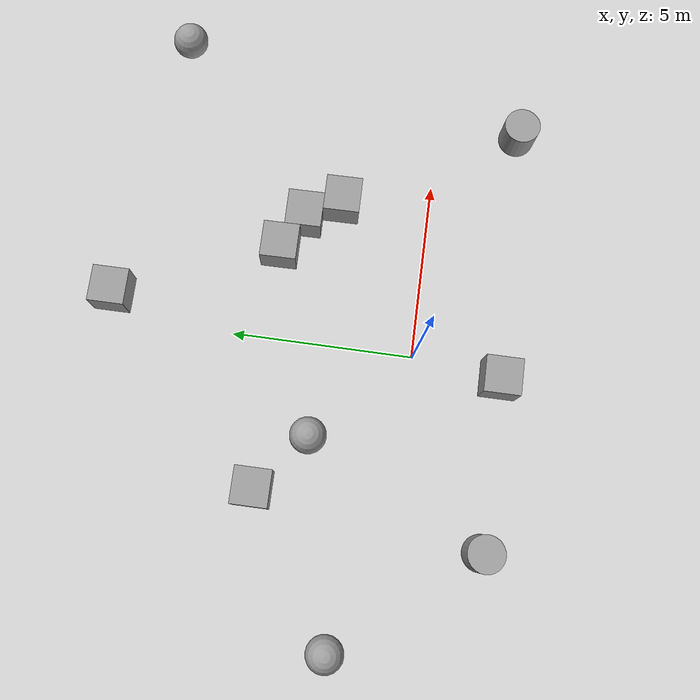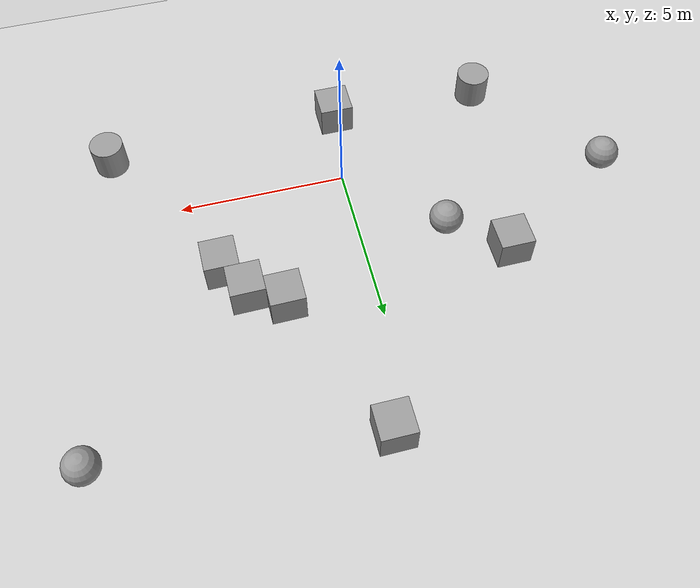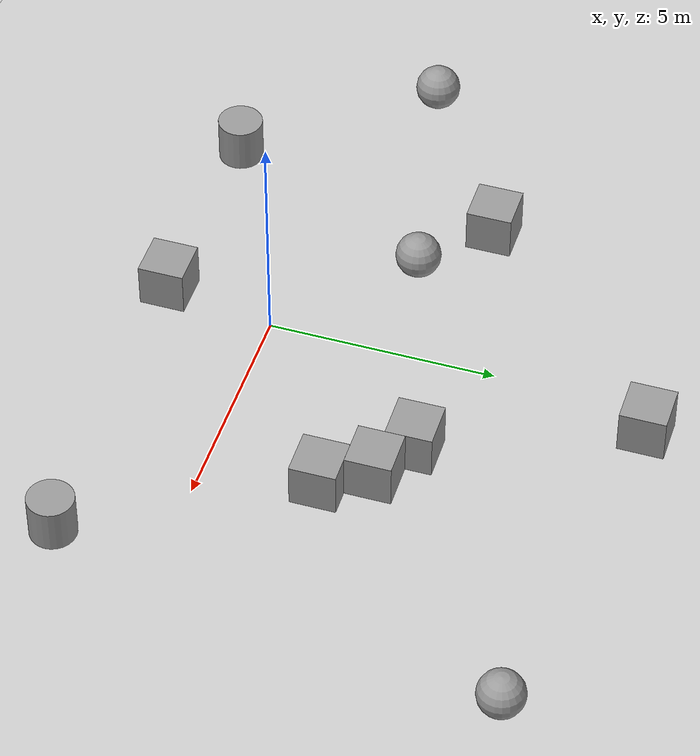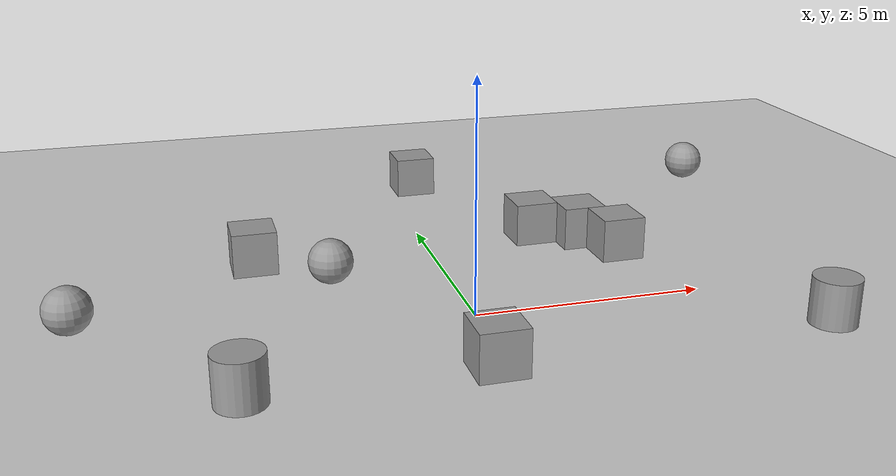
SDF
<sdf version="1.6">
 <world name="default">
  <model name="ground_plane">
   <static>1</static>
   <link name="link">
    <collision name="collision">
     <geometry><plane><normal>0 0 1</normal><size>100 100</size></plane></geometry>
     <surface>
      <contact><collide_bitmask>65535</collide_bitmask></contact>
      <friction><ode><mu>100</mu><mu2>50</mu2></ode></friction>
     </surface>
    </collision>
    <visual name="visual">
     <cast_shadows>0</cast_shadows>
     <geometry><plane><normal>0 0 1</normal><size>100 100</size></plane></geometry>
     <material>
      <script><uri>file://media/materials/scripts/gazebo.material</uri><name>Gazebo/Grey</name></script>
     </material>
    </visual>
   </link>
  </model>
  <model name="unit_box">
   <pose>-0.323593 -2.40463 0.5 0 -0 0</pose>
   <link name="link">
    <inertial>
     <mass>1</mass>
     <inertia>
      <ixx>0.166667</ixx>
      <ixy>0</ixy>
      <ixz>0</ixz>
      <iyy>0.166667</iyy>
      <iyz>0</iyz>
      <izz>0.166667</izz>
     </inertia>
    </inertial>
    <collision name="collision"><geometry><box><size>1 1 1</size></box></geometry></collision>
    <visual name="visual">
     <geometry><box><size>1 1 1</size></box></geometry>
     <material>
      <script><name>Gazebo/Grey</name><uri>file://media/materials/scripts/gazebo.material</uri></script>
     </material>
    </visual>
   </link>
  </model>
  <model name="unit_box_0">
   <pose>-4.10123 3.81358 0.499995 0 1e-05 0</pose>
   <link name="link">
    <inertial>
     <mass>1</mass>
     <inertia>
      <ixx>0.166667</ixx>
      <ixy>0</ixy>
      <ixz>0</ixz>
      <iyy>0.166667</iyy>
      <iyz>0</iyz>
      <izz>0.166667</izz>
     </inertia>
    </inertial>
    <collision name="collision"><geometry><box><size>1 1 1</size></box></geometry></collision>
    <visual name="visual">
     <geometry><box><size>1 1 1</size></box></geometry>
     <material>
      <script><name>Gazebo/Grey</name><uri>file://media/materials/scripts/gazebo.material</uri></script>
     </material>
    </visual>
   </link>
  </model>
  <model name="unit_sphere_0">
   <pose>-2.55111 2.54212 0.5 0 -0 0</pose>
   <link name="link">
    <inertial>
     <mass>1</mass>
     <inertia><ixx>0.1</ixx><ixy>0</ixy><ixz>0</ixz><iyy>0.1</iyy><iyz>0</iyz><izz>0.1</izz></inertia>
    </inertial>
    <collision name="collision"><geometry><sphere><radius>0.5</radius></sphere></geometry></collision>
    <visual name="visual">
     <geometry><sphere><radius>0.5</radius></sphere></geometry>
     <material>
      <script><name>Gazebo/Grey</name><uri>file://media/materials/scripts/gazebo.material</uri></script>
     </material>
    </visual>
   </link>
  </model>
  <model name="unit_cylinder_1">
   <pose>6.84527 -2.29574 0.5 0 -0 0</pose>
   <link name="link">
    <inertial>
     <mass>1</mass>
     <inertia><ixx>0.145833</ixx><ixy>0</ixy><ixz>0</ixz><iyy>0.145833</iyy><iyz>0</iyz><izz>0.125</izz></inertia>
    </inertial>
    <collision name="collision">
     <geometry><cylinder><radius>0.5</radius><length>1</length></cylinder></geometry>
    </collision>
    <visual name="visual">
     <geometry><cylinder><radius>0.5</radius><length>1</length></cylinder></geometry>
     <material>
      <script><name>Gazebo/Grey</name><uri>file://media/materials/scripts/gazebo.material</uri></script>
     </material>
    </visual>
   </link>
  </model>
  <model name="unit_box_1">
   <pose>2.59734 4.02787 0.499995 0 1e-05 0.00782</pose>
   <link name="link">
    <inertial>
     <mass>1</mass>
     <inertia>
      <ixx>0.166667</ixx>
      <ixy>0</ixy>
      <ixz>0</ixz>
      <iyy>0.166667</iyy>
      <iyz>0</iyz>
      <izz>0.166667</izz>
     </inertia>
    </inertial>
    <collision name="collision"><geometry><box><size>1 1 1</size></box></geometry></collision>
    <visual name="visual">
     <geometry><box><size>1 1 1</size></box></geometry>
     <material>
      <script><name>Gazebo/Grey</name><uri>file://media/materials/scripts/gazebo.material</uri></script>
     </material>
    </visual>
   </link>
  </model>
  <model name="unit_cylinder_2">
   <pose>-4.98063 -2.3723 0.499995 3e-06 -1e-06 0</pose>
   <link name="link">
    <inertial>
     <mass>1</mass>
     <inertia><ixx>0.145833</ixx><ixy>0</ixy><ixz>0</ixz><iyy>0.145833</iyy><iyz>0</iyz><izz>0.125</izz></inertia>
    </inertial>
    <collision name="collision">
     <geometry><cylinder><radius>0.5</radius><length>1</length></cylinder></geometry>
    </collision>
    <visual name="visual">
     <geometry><cylinder><radius>0.5</radius><length>1</length></cylinder></geometry>
     <material>
      <script><name>Gazebo/Grey</name><uri>file://media/materials/scripts/gazebo.material</uri></script>
     </material>
    </visual>
   </link>
  </model>
  <model name="unit_box_2">
   <pose>4.16232 2.47664 0.499995 1e-05 -0 0.008036</pose>
   <link name="link">
    <inertial>
     <mass>1</mass>
     <inertia>
      <ixx>0.166667</ixx>
      <ixy>0</ixy>
      <ixz>0</ixz>
      <iyy>0.166667</iyy>
      <iyz>0</iyz>
      <izz>0.166667</izz>
     </inertia>
    </inertial>
    <collision name="collision"><geometry><box><size>1 1 1</size></box></geometry></collision>
    <visual name="visual">
     <geometry><box><size>1 1 1</size></box></geometry>
     <material>
      <script><name>Gazebo/Grey</name><uri>file://media/materials/scripts/gazebo.material</uri></script>
     </material>
    </visual>
   </link>
  </model>
  <model name="unit_sphere_3">
   <pose>8.48345 7.53587 0.5 0 -0 0</pose>
   <link name="link">
    <inertial>
     <mass>1</mass>
     <inertia><ixx>0.1</ixx><ixy>0</ixy><ixz>0</ixz><iyy>0.1</iyy><iyz>0</iyz><izz>0.1</izz></inertia>
    </inertial>
    <collision name="collision"><geometry><sphere><radius>0.5</radius></sphere></geometry></collision>
    <visual name="visual">
     <geometry><sphere><radius>0.5</radius></sphere></geometry>
     <material>
      <script><name>Gazebo/Grey</name><uri>file://media/materials/scripts/gazebo.material</uri></script>
     </material>
    </visual>
   </link>
  </model>
  <model name="unit_box_5">
   <pose>0.717745 8.45938 0.499995 1e-05 -0 0</pose>
   <link name="link">
    <inertial>
     <mass>1</mass>
     <inertia>
      <ixx>0.166667</ixx>
      <ixy>0</ixy>
      <ixz>0</ixz>
      <iyy>0.166667</iyy>
      <iyz>0</iyz>
      <izz>0.166667</izz>
     </inertia>
    </inertial>
    <collision name="collision"><geometry><box><size>1 1 1</size></box></geometry></collision>
    <visual name="visual">
     <geometry><box><size>1 1 1</size></box></geometry>
     <material>
      <script><name>Gazebo/Grey</name><uri>file://media/materials/scripts/gazebo.material</uri></script>
     </material>
    </visual>
   </link>
  </model>
  <model name="unit_box_6">
   <pose>3.6018 3.47234 0.499995 0 1e-05 0.00791</pose>
   <link name="link">
    <inertial>
     <mass>1</mass>
     <inertia>
      <ixx>0.166667</ixx>
      <ixy>0</ixy>
      <ixz>0</ixz>
      <iyy>0.166667</iyy>
      <iyz>0</iyz>
      <izz>0.166667</izz>
     </inertia>
    </inertial>
    <collision name="collision"><geometry><box><size>1 1 1</size></box></geometry></collision>
    <visual name="visual">
     <geometry><box><size>1 1 1</size></box></geometry>
     <material>
      <script><name>Gazebo/Grey</name><uri>file://media/materials/scripts/gazebo.material</uri></script>
     </material>
    </visual>
   </link>
  </model>
  <model name="unit_sphere_1">
   <pose>-7.97349 1.37373 0.5 0 -0 0</pose>
   <link name="link">
    <inertial>
     <mass>1</mass>
     <inertia><ixx>0.1</ixx><ixy>0</ixy><ixz>0</ixz><iyy>0.1</iyy><iyz>0</iyz><izz>0.1</izz></inertia>
    </inertial>
    <collision name="collision"><geometry><sphere><radius>0.5</radius></sphere></geometry></collision>
    <visual name="visual">
     <geometry><sphere><radius>0.5</radius></sphere></geometry>
     <material>
      <script><name>Gazebo/Grey</name><uri>file://media/materials/scripts/gazebo.material</uri></script>
     </material>
    </visual>
   </link>
  </model>
 </world>
</sdf>
